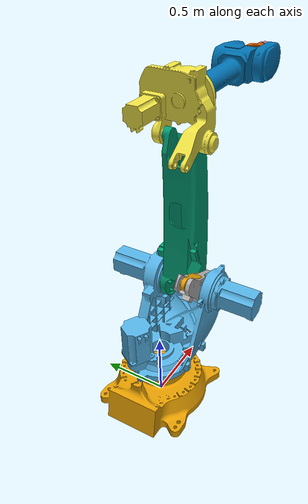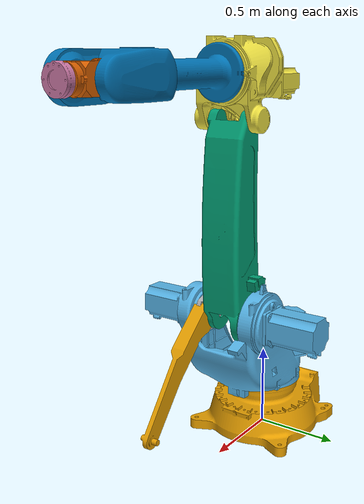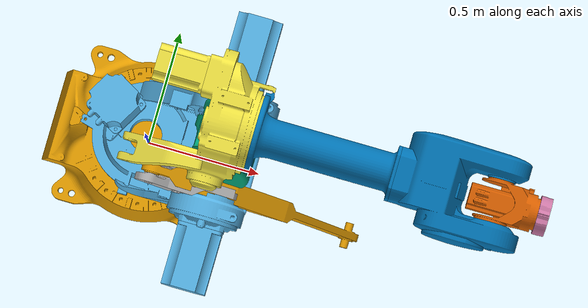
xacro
<?xml version="1.0"?>
<robot name="comau_nj_130_2_6" xmlns:xacro="http://ros.org/wiki/xacro">

  <xacro:include filename="$(find comau_nj_130_2_6_description)/urdf/nj_130_2_6_arm.urdf.xacro" />

  <xacro:include filename="$(find comau_nj_130_2_6_description)/urdf/nj_130_2_6.ros2_control.xacro" />

  <xacro:comau_nj_130_2_6_ros2_control hardware="$(arg hardware)" />

</robot>

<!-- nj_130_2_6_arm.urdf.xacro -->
<robot xmlns:xacro="http://www.ros.org/wiki/xacro">

  <!-- helper macro -->
  <xacro:macro name="add_visual_and_collision" params="link_name xyz rpy">
    <visual>
      <origin xyz="${xyz}" rpy="${rpy}"/>
      <geometry>
        <mesh filename="package://comau_nj_130_2_6_description/meshes/visual/${link_name}.dae"/>
      </geometry>
    </visual>
    <collision>
      <origin xyz="${xyz}" rpy="${rpy}"/>
      <geometry>
          <mesh filename="package://comau_nj_130_2_6_description/meshes/collision/${link_name}.stl"/>
      </geometry>
    </collision>
  </xacro:macro>

  <!-- ROBOT LINKS -->

  <link name="base_link">
    <xacro:add_visual_and_collision link_name="link_0" xyz="0 0 0" rpy="0 0 0"/>
    <!-- inertia, none because base is a fixed link -->
  </link>

  <link name="link_1_and_motors">
    <xacro:add_visual_and_collision link_name="link_1" xyz="0 0 0" rpy="0 0 0"/>
    <xacro:add_visual_and_collision link_name="motor_bottom" xyz="-0.157 -0.091 -0.142" rpy="0 0 ${pi/6}"/>
    <xacro:add_visual_and_collision link_name="motor_left" xyz="0.35 -0.295 -0.499" rpy="${-pi/2} ${pi} 0"/>
    <xacro:add_visual_and_collision link_name="motor_right" xyz="0.35 0.35 -0.499" rpy="${pi/2} 0 0"/>
    <inertial>
      <origin xyz="0.22392 -0.01828 -0.33805" rpy="0 0 0"/>
      <mass value="291.621"/>
      <inertia ixx="31.75734" ixy="-1.23167" ixz="6.99346" iyy="23.87224" iyz="0.39674" izz="33.27371"/>
    </inertial>
  </link>

  <link name="link_2">
    <xacro:add_visual_and_collision link_name="link_2" xyz="0 0 0" rpy="0 0 0"/>
    <inertial>
      <origin xyz="-0.02393 0.524 -0.0242" rpy="0 0 0"/>
      <mass value="84.0145"/>
      <inertia ixx="11.68085" ixy="0.02646" ixz="-0.02562" iyy="1.25519" iyz="0.18816" izz="11.28421"/>
    </inertial>
  </link>

  <link name="link_3_and_motor">
    <xacro:add_visual_and_collision link_name="link_3" xyz="0 0 0" rpy="0 0 0"/>
    <xacro:add_visual_and_collision link_name="motor_top" xyz="-0.10975 0.2 -0.16973" rpy="${-pi/2} 0 ${-pi/2}"/>
    <inertial>
      <origin xyz="-0.00823 0.21402 -0.03362" rpy="0 0 0"/>
      <mass value="106.16593"/>
      <inertia ixx="3.19439" ixy="-0.31055" ixz="-0.30181" iyy="2.87747" iyz="0.38262" izz="2.51996"/>
    </inertial>
  </link>

  <link name="link_4_and_5">
    <xacro:add_visual_and_collision link_name="link_4" xyz="0 0 0" rpy="0 0 0"/>
    <xacro:add_visual_and_collision link_name="link_5" xyz="0 0 -0.56058" rpy="0 0 0"/>
    <inertial>
      <origin xyz="0.0027 0.00143 -0.63148" rpy="0 0 0"/>
      <mass value="145.56153"/>
      <inertia ixx="12.48865" ixy="-0.02153" ixz="0.03639" iyy="11.50393" iyz="-0.21702" izz="1.94031"/>
    </inertial>
  </link>

  <link name="link_6_and_motor">
    <xacro:add_visual_and_collision link_name="link_6" xyz="0 0 0" rpy="0 0 0"/>
    <xacro:add_visual_and_collision link_name="motor_wrist" xyz="0 0.09025 0" rpy="0 0 0"/>
    <inertial>
      <origin xyz="0.00031 0.05009 0.00026" rpy="0 0 0"/>
      <mass value="14.73101"/>
      <inertia ixx="0.117" ixy="0.00121" ixz="0.00004" iyy="0.04204" iyz="-0.00128" izz="0.1105"/>
    </inertial>
  </link>

  <link name="link_7">
    <xacro:add_visual_and_collision link_name="link_7" xyz="0 0 0" rpy="0 0 0"/>
    <inertial>
      <origin xyz="-0.0016 0 -0.02735" rpy="0 0 0"/>
      <mass value="1.76396"/>
      <inertia ixx="0.00329" ixy="0.0" ixz="0.00002" iyy="0.00308" iyz="0.0" izz="0.00595"/>
    </inertial>
  </link>

  <link name="link_8">
    <xacro:add_visual_and_collision link_name="link_8" xyz="0 0 0" rpy="0 0 0"/>
    <inertial>
      <origin xyz="-0.16357 -0.00986 -0.02754" rpy="0 0 0"/>
      <mass value="15.91258"/>
      <inertia ixx="0.05682" ixy="-0.01403" ixz="0.00188" iyy="0.24032" iyz="0.00061" izz="0.26765"/>
    </inertial>
  </link>

  <link name="link_9">
    <xacro:add_visual_and_collision link_name="link_9" xyz="0 0 0" rpy="0 0 0"/>
    <inertial>
      <origin xyz="0.06515 0.50884 0.01475" rpy="0 0 0"/>
      <mass value="27.86138"/>
      <inertia ixx="2.45327" ixy="0.06433" ixz="0.00017" iyy="0.06647" iyz="-0.00083" izz="2.4958"/>
    </inertial>
  </link>

  <!-- These links are virtual, the have zero size. They are needed as one real joint is modelled as two - as it gets influenced by Joint2 and Joint3 -->
  <link name="elbow_passive_virtual_link"/>
  <link name="lower_back_virtual_link"/>

  <!-- ROBOT JOINTS -->

  <!-- joints - main serial chain -->
  <joint name="waist" type="revolute">
    <parent link="base_link"/>
    <child link="link_1_and_motors"/>
    <origin xyz="0 0 0.331" rpy="${pi} 0 0"/>
    <axis xyz="0 0 1"/>
    <limit lower="${radians(-180)}" upper="${radians(180)}" velocity="${radians(110)}" effort="100000.0" />
  </joint>

  <joint name="shoulder" type="revolute">
    <parent link="link_1_and_motors"/>
    <child link="link_2"/>
    <origin xyz="0.35 0 -0.499" rpy="${-pi/2} 0 ${pi}"/>
    <axis xyz="0 0 1"/>
    <limit lower="${radians(-75)}" upper="${radians(95)}" velocity="${radians(110)}" effort="100000.0" />
  </joint>

  <joint name="elbow_active" type="revolute">
    <parent link="link_1_and_motors"/>
    <child link="link_8"/>
    <origin xyz="0.35 0.1945 -0.499" rpy="${-pi/2} ${radians(95)} 0"/>
    <axis xyz="0 0 1"/>
    <limit lower="${radians(-256)}" upper="${radians(-10)}" velocity="${radians(110)}" effort="100000.0" />
  </joint>

  <joint name="forearm_roll" type="revolute">
    <parent link="link_3_and_motor"/>
    <child link="link_4_and_5"/>
    <origin xyz="0.145 0.25 0" rpy="${-pi/2} ${0} ${pi/2}"/>
    <axis xyz="0 0 1"/>
    <limit lower="${radians(-280)}" upper="${radians(280)}" velocity="${radians(190)}" effort="100000.0" />
  </joint>

  <joint name="wrist_angle" type="revolute">
    <parent link="link_4_and_5"/>
    <child link="link_6_and_motor"/>
    <origin xyz="0 0 -0.96058" rpy="${-pi/2} 0 0"/>
    <axis xyz="0 0 1"/>
    <limit lower="${radians(-120)}" upper="${radians(120)}" velocity="${radians(190)}" effort="100000.0" />
  </joint>

  <joint name="wrist_rotate" type="revolute">
    <parent link="link_6_and_motor"/>
    <child link="link_7"/>
    <origin xyz="0 0.165 0" rpy="${pi/2} 0 0"/>
    <axis xyz="0 0 1"/>
    <limit lower="${radians(-2700)}" upper="${radians(2700)}" velocity="${radians(230)}" effort="100000.0" />
  </joint>

  <!-- passive elbow joint -->
  <joint name="elbow_passive_mimic_1" type="continuous">
    <parent link="link_2"/>
    <child link="elbow_passive_virtual_link"/>
    <origin xyz="0 1.16 0" rpy="0 ${pi} 0"/>
    <axis xyz="0 0 1"/>
    <mimic joint="shoulder" multiplier="1" offset="0" />
  </joint>

  <joint name="elbow_passive_mimic_2" type="continuous">
    <parent link="elbow_passive_virtual_link"/>
    <child link="link_3_and_motor"/>
    <origin xyz="0 0 0" rpy="0 0 0"/>
    <axis xyz="0 0 1"/>
    <mimic joint="elbow_active" multiplier="1" offset="${radians(90)}" />
  </joint>

  <!-- lower back passive joint-->
  <joint name="lower_back_passive_mimic_1" type="continuous">
    <parent link="link_8"/>
    <child link="lower_back_virtual_link"/>
    <origin xyz="-0.32 0 -0.015" rpy="0 ${pi} ${radians(-5 - 90)}"/>
    <axis xyz="0 0 1"/>
    <mimic joint="shoulder" multiplier="1" offset="0" />
  </joint>

  <joint name="lower_back_passive_mimic_2" type="continuous">
    <parent link="lower_back_virtual_link"/>
    <child link="link_9"/>
    <origin xyz="0 0 0" rpy="0 0 0"/>
    <axis xyz="0 0 1"/>
    <mimic joint="elbow_active" multiplier="1" offset="0" />
  </joint>

</robot>
